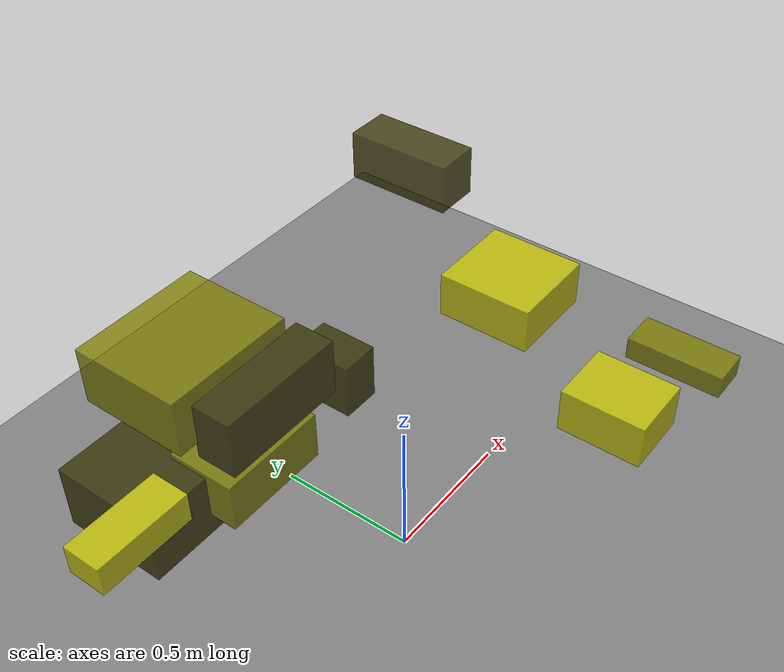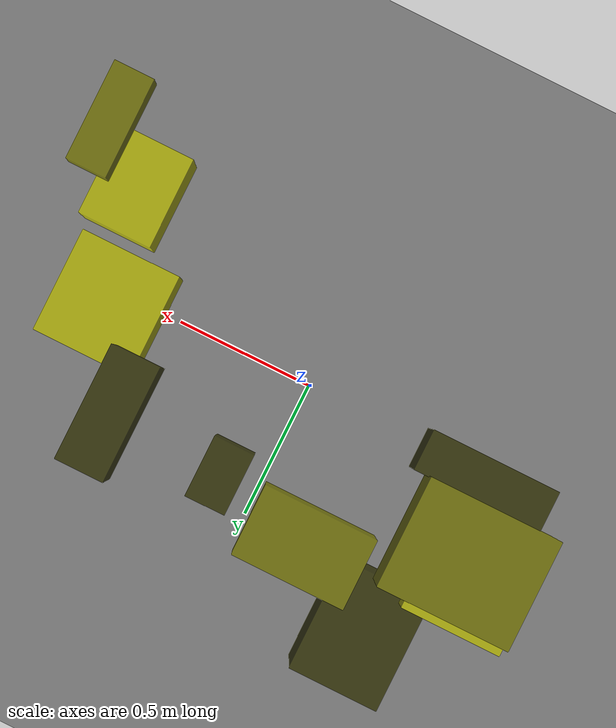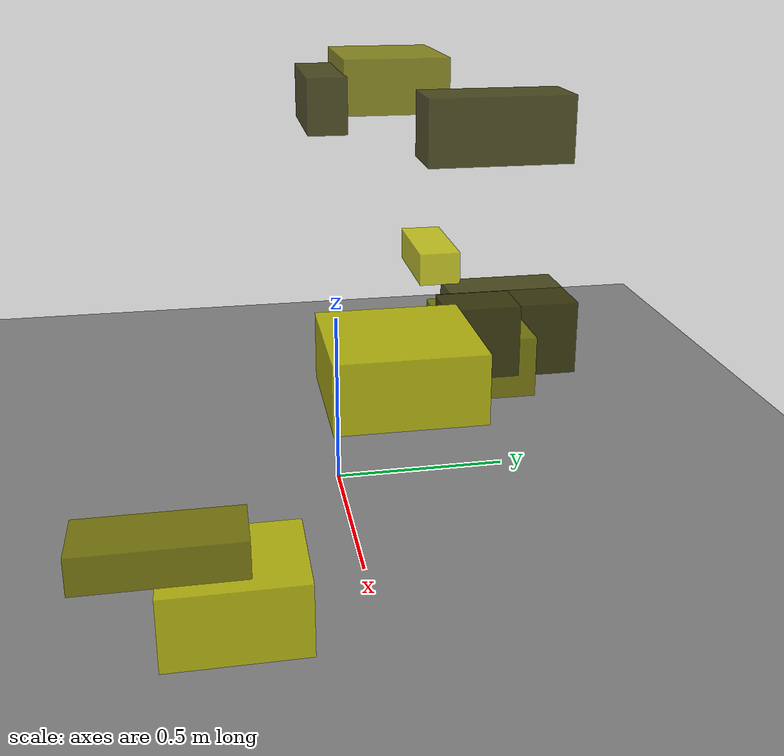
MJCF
<?xml version="1.0"?>
<mujoco model="obstacle_scene">
  <compiler angle="radian" coordinate="local"/>
  <option timestep="0.001" gravity="0 0 -9.81"/>

  <asset>
    <material name="obstacle_mat" rgba="0.8 0.8 0.0 0.8"/>
    <material name="ground_mat" rgba="0.5 0.5 0.5 1"/>
  </asset>

  <worldbody>
    <!-- Ground plane -->
    <geom name="ground" type="plane" size="3 3 0.1" material="ground_mat"/>

    <!-- Obstacles -->
    <body name="obstacle_0" pos="0.132470 0.378661 0.475521">
      <geom name="obs_0" type="box" size="0.068905 0.103726 0.101570" rgba="0.2 0.2 0.0 0.8"/>
    </body>
    <body name="obstacle_1" pos="-0.214339 0.477792 0.302963">
      <geom name="obs_1" type="box" size="0.201713 0.125503 0.092914" rgba="0.5 0.5 0.0 0.8"/>
    </body>
    <body name="obstacle_2" pos="-0.737713 0.431345 0.447816">
      <geom name="obs_2" type="box" size="0.172415 0.069677 0.054941" rgba="0.8 0.8 0.0 0.8"/>
    </body>
    <body name="obstacle_3" pos="-0.529539 0.026013 1.047989">
      <geom name="obs_3" type="box" size="0.190108 0.060681 0.086328" rgba="0.2 0.2 0.0 0.8"/>
    </body>
    <body name="obstacle_4" pos="0.957034 -0.476205 0.394878">
      <geom name="obs_4" type="box" size="0.071366 0.175973 0.041821" rgba="0.5 0.5 0.0 0.8"/>
    </body>
    <body name="obstacle_5" pos="0.667615 0.056102 0.625255">
      <geom name="obs_5" type="box" size="0.162234 0.168740 0.080456" rgba="0.8 0.8 0.0 0.8"/>
    </body>
    <body name="obstacle_6" pos="-0.502471 0.653021 0.253533">
      <geom name="obs_6" type="box" size="0.158021 0.197503 0.123718" rgba="0.2 0.2 0.0 0.8"/>
    </body>
    <body name="obstacle_7" pos="-0.580749 0.247124 1.095564">
      <geom name="obs_7" type="box" size="0.196294 0.164172 0.085188" rgba="0.5 0.5 0.0 0.8"/>
    </body>
    <body name="obstacle_8" pos="0.812723 -0.334440 0.181488">
      <geom name="obs_8" type="box" size="0.132309 0.163106 0.088748" rgba="0.8 0.8 0.0 0.8"/>
    </body>
    <body name="obstacle_9" pos="0.466926 0.316677 1.121242">
      <geom name="obs_9" type="box" size="0.072294 0.171004 0.078243" rgba="0.2 0.2 0.0 0.8"/>
    </body>
  </worldbody>
</mujoco>
